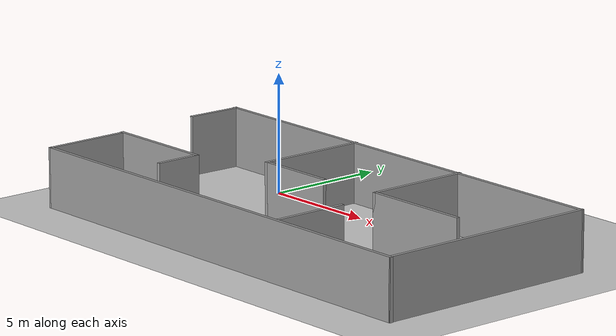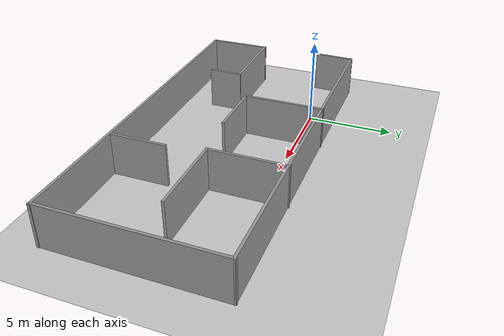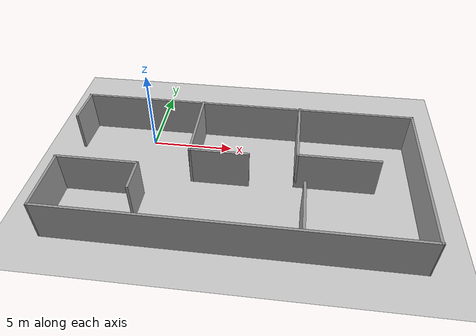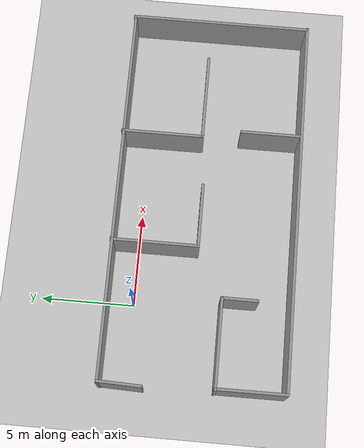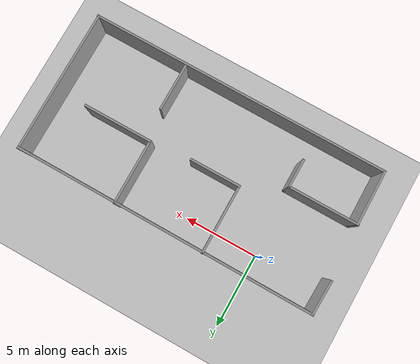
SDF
<sdf version="1.7">
 <world name="default">
  <model name="ground_plane">
   <static>1</static>
   <link name="link">
    <collision name="collision">
     <geometry><plane><normal>0 0 1</normal><size>100 100</size></plane></geometry>
     <surface><friction><ode><mu>100</mu><mu2>50</mu2></ode></friction></surface>
    </collision>
    <visual name="visual">
     <cast_shadows>0</cast_shadows>
     <geometry><plane><normal>0 0 1</normal><size>100 100</size></plane></geometry>
     <material>
      <script><uri>file://media/materials/scripts/gazebo.material</uri><name>Gazebo/Grey</name></script>
     </material>
    </visual>
   </link>
  </model>
  <light name="sun" type="directional">
   <pose>0 0 10 0 -0 0</pose>
   <diffuse>0.8 0.8 0.8 1</diffuse>
   <specular>0.2 0.2 0.2 1</specular>
   <attenuation>
    <range>1000</range>
    <constant>0.9</constant>
    <linear>0.01</linear>
    <quadratic>0.001</quadratic>
   </attenuation>
   <direction>-0.5 0.1 -0.9</direction>
   <spot><inner_angle>0</inner_angle><outer_angle>0</outer_angle><falloff>0</falloff></spot>
  </light>
  <scene><shadows>0</shadows><ambient>0.4 0.4 0.4 1</ambient><background>0.7 0.7 0.7 1</background></scene>
  <physics type="ode">
   <real_time_update_rate>1000</real_time_update_rate>
   <max_step_size>0.001</max_step_size>
   <real_time_factor>1</real_time_factor>
   <ode>
    <solver>
     <type>quick</type>
     <iters>150</iters>
     <precon_iters>0</precon_iters>
     <sor>1.4</sor>
     <use_dynamic_moi_rescaling>1</use_dynamic_moi_rescaling>
    </solver>
    <constraints>
     <cfm>1e-05</cfm>
     <erp>0.2</erp>
     <contact_max_correcting_vel>2000</contact_max_correcting_vel>
     <contact_surface_layer>0.01</contact_surface_layer>
    </constraints>
   </ode>
  </physics>
  <gravity>0 0 -9.8</gravity>
  <magnetic_field>6e-06 2.3e-05 -4.2e-05</magnetic_field>
  <atmosphere type="adiabatic"/>
  <audio><device>default</device></audio>
  <spherical_coordinates>
   <surface_model>EARTH_WGS84</surface_model>
   <latitude_deg>0</latitude_deg>
   <longitude_deg>0</longitude_deg>
   <elevation>0</elevation>
   <heading_deg>0</heading_deg>
  </spherical_coordinates>
  <model name="Untitled">
   <pose>5.79713 -3.43371 0 0 -0 0</pose>
   <link name="Wall_0">
    <collision name="Wall_0_Collision">
     <geometry><box><size>20.5953 0.15 2.5</size></box></geometry>
     <pose>0 0 1.25 0 -0 0</pose>
    </collision>
    <visual name="Wall_0_Visual">
     <pose>0 0 1.25 0 -0 0</pose>
     <geometry><box><size>20.5953 0.15 2.5</size></box></geometry>
     <material>
      <script><uri>file://media/materials/scripts/gazebo.material</uri><name>Gazebo/Grey</name></script>
      <ambient>1 1 1 1</ambient>
     </material>
     <meta><layer>0</layer></meta>
    </visual>
    <pose>0.010563 4.81222 0 0 -0 -0.001968</pose>
   </link>
   <link name="Wall_1">
    <collision name="Wall_1_Collision">
     <geometry><box><size>9.83836 0.15 2.5</size></box></geometry>
     <pose>0 0 1.25 0 -0 0</pose>
    </collision>
    <visual name="Wall_1_Visual">
     <pose>0 0 1.25 0 -0 0</pose>
     <geometry><box><size>9.83836 0.15 2.5</size></box></geometry>
     <material>
      <script><uri>file://media/materials/scripts/gazebo.material</uri><name>Gazebo/Grey</name></script>
      <ambient>1 1 1 1</ambient>
     </material>
     <meta><layer>0</layer></meta>
    </visual>
    <pose>10.2288 -0.016887 0 0 -0 -1.57171</pose>
   </link>
   <link name="Wall_11">
    <collision name="Wall_11_Collision">
     <geometry><box><size>3.81285 0.15 2.5</size></box></geometry>
     <pose>0 0 1.25 0 -0 0</pose>
    </collision>
    <visual name="Wall_11_Visual">
     <pose>0 0 1.25 0 -0 0</pose>
     <geometry><box><size>3.81285 0.15 2.5</size></box></geometry>
     <material>
      <script><uri>file://media/materials/scripts/gazebo.material</uri><name>Gazebo/Grey</name></script>
      <ambient>1 1 1 1</ambient>
     </material>
     <meta><layer>0</layer></meta>
    </visual>
    <pose>-10.0542 -3.0246 0 0 -0 1.57491</pose>
   </link>
   <link name="Wall_13">
    <collision name="Wall_13_Collision">
     <geometry><box><size>4.8222 0.15 2.5</size></box></geometry>
     <pose>0 0 1.25 0 -0 0</pose>
    </collision>
    <visual name="Wall_13_Visual">
     <pose>0 0 1.25 0 -0 0</pose>
     <geometry><box><size>4.8222 0.15 2.5</size></box></geometry>
     <material>
      <script><uri>file://media/materials/scripts/gazebo.material</uri><name>Gazebo/Grey</name></script>
      <ambient>1 1 1 1</ambient>
     </material>
     <meta><layer>0</layer></meta>
    </visual>
    <pose>-7.76077 -1.19319 0 0 -0 0</pose>
   </link>
   <link name="Wall_2">
    <collision name="Wall_2_Collision">
     <geometry><box><size>20.421 0.15 2.5</size></box></geometry>
     <pose>0 0 1.25 0 -0 0</pose>
    </collision>
    <visual name="Wall_2_Visual">
     <pose>0 0 1.25 0 -0 0</pose>
     <geometry><box><size>20.421 0.15 2.5</size></box></geometry>
     <material>
      <script><uri>file://media/materials/scripts/gazebo.material</uri><name>Gazebo/Grey</name></script>
      <ambient>1 1 1 1</ambient>
     </material>
     <meta><layer>0</layer></meta>
    </visual>
    <pose>0.124053 -4.85854 0 0 -0 3.14134</pose>
   </link>
   <link name="Wall_20">
    <collision name="Wall_20_Collision">
     <geometry><box><size>2 0.15 2.5</size></box></geometry>
     <pose>0 0 1.25 0 -0 0</pose>
    </collision>
    <visual name="Wall_20_Visual">
     <pose>0 0 1.25 0 -0 0</pose>
     <geometry><box><size>2 0.15 2.5</size></box></geometry>
     <material>
      <script><uri>file://media/materials/scripts/gazebo.material</uri><name>Gazebo/Grey</name></script>
      <ambient>1 1 1 1</ambient>
     </material>
     <meta><layer>0</layer></meta>
    </visual>
    <pose>-5.38949 -2.11819 0 0 -0 -1.5708</pose>
   </link>
   <link name="Wall_24">
    <collision name="Wall_24_Collision">
     <geometry><box><size>4.5 0.15 2.5</size></box></geometry>
     <pose>0 0 1.25 0 -0 0</pose>
    </collision>
    <visual name="Wall_24_Visual">
     <pose>0 0 1.25 0 -0 0</pose>
     <geometry><box><size>4.5 0.15 2.5</size></box></geometry>
     <material>
      <script><uri>file://media/materials/scripts/gazebo.material</uri><name>Gazebo/Grey</name></script>
      <ambient>1 1 1 1</ambient>
     </material>
     <meta><layer>0</layer></meta>
    </visual>
    <pose>3.37882 2.68613 0 0 -0 -1.5708</pose>
   </link>
   <link name="Wall_25">
    <collision name="Wall_25_Collision">
     <geometry><box><size>4.75 0.15 2.5</size></box></geometry>
     <pose>0 0 1.25 0 -0 0</pose>
    </collision>
    <visual name="Wall_25_Visual">
     <pose>0 0 1.25 0 -0 0</pose>
     <geometry><box><size>4.75 0.15 2.5</size></box></geometry>
     <material>
      <script><uri>file://media/materials/scripts/gazebo.material</uri><name>Gazebo/Grey</name></script>
      <ambient>1 1 1 1</ambient>
     </material>
     <meta><layer>0</layer></meta>
    </visual>
    <pose>5.67882 0.511131 0 0 -0 0</pose>
   </link>
   <link name="Wall_27">
    <collision name="Wall_27_Collision">
     <geometry><box><size>4.75 0.15 2.5</size></box></geometry>
     <pose>0 0 1.25 0 -0 0</pose>
    </collision>
    <visual name="Wall_27_Visual">
     <pose>0 0 1.25 0 -0 0</pose>
     <geometry><box><size>4.75 0.15 2.5</size></box></geometry>
     <material>
      <script><uri>file://media/materials/scripts/gazebo.material</uri><name>Gazebo/Grey</name></script>
      <ambient>1 1 1 1</ambient>
     </material>
     <meta><layer>0</layer></meta>
    </visual>
    <pose>-2.74228 2.56113 0 0 -0 -1.5708</pose>
   </link>
   <link name="Wall_28">
    <collision name="Wall_28_Collision">
     <geometry><box><size>3.5 0.15 2.5</size></box></geometry>
     <pose>0 0 1.25 0 -0 0</pose>
    </collision>
    <visual name="Wall_28_Visual">
     <pose>0 0 1.25 0 -0 0</pose>
     <geometry><box><size>3.5 0.15 2.5</size></box></geometry>
     <material>
      <script><uri>file://media/materials/scripts/gazebo.material</uri><name>Gazebo/Grey</name></script>
      <ambient>1 1 1 1</ambient>
     </material>
     <meta><layer>0</layer></meta>
    </visual>
    <pose>-1.06728 0.261131 0 0 -0 0</pose>
   </link>
   <link name="Wall_30">
    <collision name="Wall_30_Collision">
     <geometry><box><size>3.25 0.15 2.5</size></box></geometry>
     <pose>0 0 1.25 0 -0 0</pose>
    </collision>
    <visual name="Wall_30_Visual">
     <pose>0 0 1.25 0 -0 0</pose>
     <geometry><box><size>3.25 0.15 2.5</size></box></geometry>
     <material>
      <script><uri>file://media/materials/scripts/gazebo.material</uri><name>Gazebo/Grey</name></script>
      <ambient>1 1 1 1</ambient>
     </material>
     <meta><layer>0</layer></meta>
    </visual>
    <pose>3.83615 -3.16176 0 0 -0 -1.5708</pose>
   </link>
   <link name="Wall_8">
    <collision name="Wall_8_Collision">
     <geometry><box><size>2.39729 0.15 2.5</size></box></geometry>
     <pose>0 0 1.25 0 -0 0</pose>
    </collision>
    <visual name="Wall_8_Visual">
     <pose>0 0 1.25 0 -0 0</pose>
     <geometry><box><size>2.39729 0.15 2.5</size></box></geometry>
     <material>
      <script><uri>file://media/materials/scripts/gazebo.material</uri><name>Gazebo/Grey</name></script>
      <ambient>1 1 1 1</ambient>
     </material>
     <meta><layer>0</layer></meta>
    </visual>
    <pose>-10.2169 3.70941 0 0 -0 -1.60643</pose>
   </link>
   <static>1</static>
  </model>
 </world>
</sdf>
